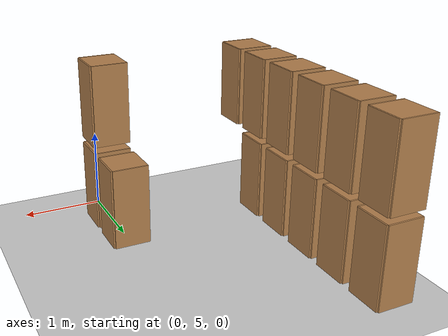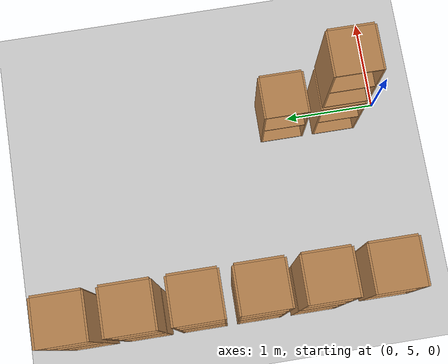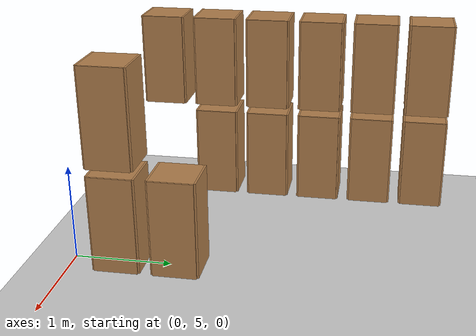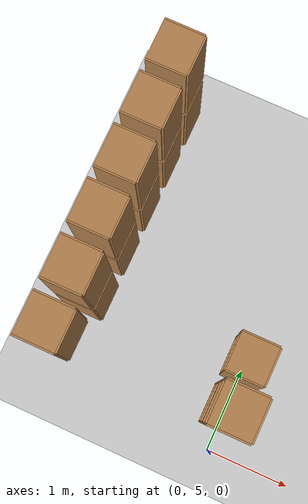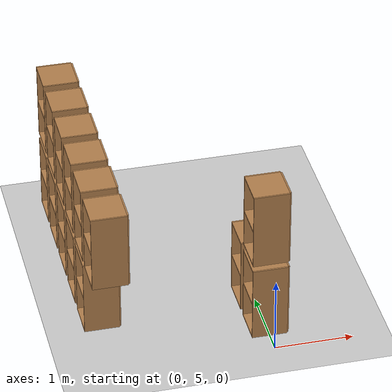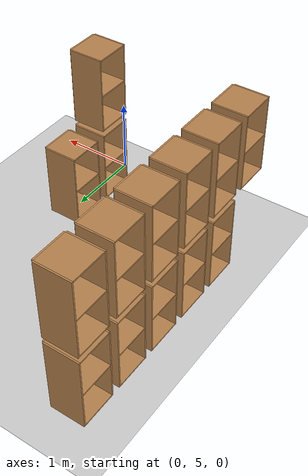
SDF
<sdf version="1.7">
 <world name="default">
  <model name="ground_plane">
   <static>1</static>
   <link name="link">
    <collision name="collision">
     <geometry><plane><normal>0 0 1</normal><size>100 100</size></plane></geometry>
     <surface><friction><ode><mu>100</mu><mu2>50</mu2></ode></friction></surface>
    </collision>
    <visual name="visual">
     <cast_shadows>0</cast_shadows>
     <geometry><plane><normal>0 0 1</normal><size>100 100</size></plane></geometry>
     <material>
      <script><uri>file://media/materials/scripts/gazebo.material</uri><name>Gazebo/Grey</name></script>
     </material>
    </visual>
   </link>
  </model>
  <model name="cabinet_13">
   <static>1</static>
   <link name="cabinet_bottom_plate">
    <inertial>
     <pose>0 0 -1 0 -0 0</pose>
     <inertia><ixx>2.05</ixx><ixy>0</ixy><ixz>0</ixz><iyy>2.05</iyy><iyz>0</iyz><izz>2.05</izz></inertia>
     <mass>25</mass>
    </inertial>
    <collision name="cabinet_bottom_plate_geom">
     <pose>0 0 0.01 0 -0 0</pose>
     <geometry><box><size>0.45 0.45 0.02</size></box></geometry>
    </collision>
    <visual name="cabinet_bottom_plate_geom_visual">
     <pose>0 0 0.01 0 -0 0</pose>
     <geometry><box><size>0.45 0.45 0.02</size></box></geometry>
     <material>
      <script><uri>file://media/materials/scripts/gazebo.material</uri><name>Gazebo/Wood</name></script>
     </material>
    </visual>
    <collision name="cabinet_bottom_plate_geom_cabinet_back_plate">
     <pose>0.235 0 0.51 0 -0 0</pose>
     <geometry><box><size>0.02 0.45 1.02</size></box></geometry>
    </collision>
    <visual name="cabinet_bottom_plate_geom_cabinet_back_plate_visual">
     <pose>0.235 0 0.51 0 -0 0</pose>
     <geometry><box><size>0.02 0.45 1.02</size></box></geometry>
     <material>
      <script><uri>file://media/materials/scripts/gazebo.material</uri><name>Gazebo/Wood</name></script>
     </material>
    </visual>
    <collision name="cabinet_bottom_plate_geom_cabinet_left_plate">
     <pose>0 0.235 0.51 0 -0 0</pose>
     <geometry><box><size>0.45 0.02 1.02</size></box></geometry>
    </collision>
    <visual name="cabinet_bottom_plate_geom_cabinet_left_plate_visual">
     <pose>0 0.235 0.51 0 -0 0</pose>
     <geometry><box><size>0.45 0.02 1.02</size></box></geometry>
     <material>
      <script><uri>file://media/materials/scripts/gazebo.material</uri><name>Gazebo/Wood</name></script>
     </material>
    </visual>
    <collision name="cabinet_bottom_plate_geom_cabinet_middle_plate">
     <pose>0 0 0.51 0 -0 0</pose>
     <geometry><box><size>0.45 0.45 0.02</size></box></geometry>
    </collision>
    <visual name="cabinet_bottom_plate_geom_cabinet_middle_plate_visual">
     <pose>0 0 0.51 0 -0 0</pose>
     <geometry><box><size>0.45 0.45 0.02</size></box></geometry>
     <material>
      <script><uri>file://media/materials/scripts/gazebo.material</uri><name>Gazebo/Wood</name></script>
     </material>
    </visual>
    <collision name="cabinet_bottom_plate_geom_cabinet_right_plate">
     <pose>0 -0.235 0.51 0 -0 0</pose>
     <geometry><box><size>0.45 0.02 1.02</size></box></geometry>
    </collision>
    <visual name="cabinet_bottom_plate_geom_cabinet_right_plate_visual">
     <pose>0 -0.235 0.51 0 -0 0</pose>
     <geometry><box><size>0.45 0.02 1.02</size></box></geometry>
     <material>
      <script><uri>file://media/materials/scripts/gazebo.material</uri><name>Gazebo/Wood</name></script>
     </material>
    </visual>
    <collision name="cabinet_bottom_plate_geom_cabinet_top_plate">
     <pose>0 0 1.01 0 -0 0</pose>
     <geometry><box><size>0.45 0.45 0.02</size></box></geometry>
    </collision>
    <visual name="cabinet_bottom_plate_geom_cabinet_top_plate_visual">
     <pose>0 0 1.01 0 -0 0</pose>
     <geometry><box><size>0.45 0.45 0.02</size></box></geometry>
     <material>
      <script><uri>file://media/materials/scripts/gazebo.material</uri><name>Gazebo/Wood</name></script>
     </material>
    </visual>
   </link>
   <pose>0 6.1 0 0 -0 0</pose>
  </model>
  <model name="cabinet_14">
   <static>1</static>
   <link name="cabinet_bottom_plate">
    <inertial>
     <pose>0 0 -1 0 -0 0</pose>
     <inertia><ixx>2.05</ixx><ixy>0</ixy><ixz>0</ixz><iyy>2.05</iyy><iyz>0</iyz><izz>2.05</izz></inertia>
     <mass>25</mass>
    </inertial>
    <collision name="cabinet_bottom_plate_geom">
     <pose>0 0 0.01 0 -0 0</pose>
     <geometry><box><size>0.45 0.45 0.02</size></box></geometry>
    </collision>
    <visual name="cabinet_bottom_plate_geom_visual">
     <pose>0 0 0.01 0 -0 0</pose>
     <geometry><box><size>0.45 0.45 0.02</size></box></geometry>
     <material>
      <script><uri>file://media/materials/scripts/gazebo.material</uri><name>Gazebo/Wood</name></script>
     </material>
    </visual>
    <collision name="cabinet_bottom_plate_geom_cabinet_back_plate">
     <pose>0.235 0 0.51 0 -0 0</pose>
     <geometry><box><size>0.02 0.45 1.02</size></box></geometry>
    </collision>
    <visual name="cabinet_bottom_plate_geom_cabinet_back_plate_visual">
     <pose>0.235 0 0.51 0 -0 0</pose>
     <geometry><box><size>0.02 0.45 1.02</size></box></geometry>
     <material>
      <script><uri>file://media/materials/scripts/gazebo.material</uri><name>Gazebo/Wood</name></script>
     </material>
    </visual>
    <collision name="cabinet_bottom_plate_geom_cabinet_left_plate">
     <pose>0 0.235 0.51 0 -0 0</pose>
     <geometry><box><size>0.45 0.02 1.02</size></box></geometry>
    </collision>
    <visual name="cabinet_bottom_plate_geom_cabinet_left_plate_visual">
     <pose>0 0.235 0.51 0 -0 0</pose>
     <geometry><box><size>0.45 0.02 1.02</size></box></geometry>
     <material>
      <script><uri>file://media/materials/scripts/gazebo.material</uri><name>Gazebo/Wood</name></script>
     </material>
    </visual>
    <collision name="cabinet_bottom_plate_geom_cabinet_middle_plate">
     <pose>0 0 0.51 0 -0 0</pose>
     <geometry><box><size>0.45 0.45 0.02</size></box></geometry>
    </collision>
    <visual name="cabinet_bottom_plate_geom_cabinet_middle_plate_visual">
     <pose>0 0 0.51 0 -0 0</pose>
     <geometry><box><size>0.45 0.45 0.02</size></box></geometry>
     <material>
      <script><uri>file://media/materials/scripts/gazebo.material</uri><name>Gazebo/Wood</name></script>
     </material>
    </visual>
    <collision name="cabinet_bottom_plate_geom_cabinet_right_plate">
     <pose>0 -0.235 0.51 0 -0 0</pose>
     <geometry><box><size>0.45 0.02 1.02</size></box></geometry>
    </collision>
    <visual name="cabinet_bottom_plate_geom_cabinet_right_plate_visual">
     <pose>0 -0.235 0.51 0 -0 0</pose>
     <geometry><box><size>0.45 0.02 1.02</size></box></geometry>
     <material>
      <script><uri>file://media/materials/scripts/gazebo.material</uri><name>Gazebo/Wood</name></script>
     </material>
    </visual>
    <collision name="cabinet_bottom_plate_geom_cabinet_top_plate">
     <pose>0 0 1.01 0 -0 0</pose>
     <geometry><box><size>0.45 0.45 0.02</size></box></geometry>
    </collision>
    <visual name="cabinet_bottom_plate_geom_cabinet_top_plate_visual">
     <pose>0 0 1.01 0 -0 0</pose>
     <geometry><box><size>0.45 0.45 0.02</size></box></geometry>
     <material>
      <script><uri>file://media/materials/scripts/gazebo.material</uri><name>Gazebo/Wood</name></script>
     </material>
    </visual>
   </link>
   <pose>0 5.5 0 0 -0 0</pose>
  </model>
  <model name="cabinet_21">
   <static>1</static>
   <link name="cabinet_bottom_plate">
    <inertial>
     <pose>0 0 -1 0 -0 0</pose>
     <inertia><ixx>2.05</ixx><ixy>0</ixy><ixz>0</ixz><iyy>2.05</iyy><iyz>0</iyz><izz>2.05</izz></inertia>
     <mass>25</mass>
    </inertial>
    <collision name="cabinet_bottom_plate_geom">
     <pose>0 0 0.01 0 -0 0</pose>
     <geometry><box><size>0.45 0.45 0.02</size></box></geometry>
    </collision>
    <visual name="cabinet_bottom_plate_geom_visual">
     <pose>0 0 0.01 0 -0 0</pose>
     <geometry><box><size>0.45 0.45 0.02</size></box></geometry>
     <material>
      <script><uri>file://media/materials/scripts/gazebo.material</uri><name>Gazebo/Wood</name></script>
     </material>
    </visual>
    <collision name="cabinet_bottom_plate_geom_cabinet_back_plate">
     <pose>0.235 0 0.51 0 -0 0</pose>
     <geometry><box><size>0.02 0.45 1.02</size></box></geometry>
    </collision>
    <visual name="cabinet_bottom_plate_geom_cabinet_back_plate_visual">
     <pose>0.235 0 0.51 0 -0 0</pose>
     <geometry><box><size>0.02 0.45 1.02</size></box></geometry>
     <material>
      <script><uri>file://media/materials/scripts/gazebo.material</uri><name>Gazebo/Wood</name></script>
     </material>
    </visual>
    <collision name="cabinet_bottom_plate_geom_cabinet_left_plate">
     <pose>0 0.235 0.51 0 -0 0</pose>
     <geometry><box><size>0.45 0.02 1.02</size></box></geometry>
    </collision>
    <visual name="cabinet_bottom_plate_geom_cabinet_left_plate_visual">
     <pose>0 0.235 0.51 0 -0 0</pose>
     <geometry><box><size>0.45 0.02 1.02</size></box></geometry>
     <material>
      <script><uri>file://media/materials/scripts/gazebo.material</uri><name>Gazebo/Wood</name></script>
     </material>
    </visual>
    <collision name="cabinet_bottom_plate_geom_cabinet_middle_plate">
     <pose>0 0 0.51 0 -0 0</pose>
     <geometry><box><size>0.45 0.45 0.02</size></box></geometry>
    </collision>
    <visual name="cabinet_bottom_plate_geom_cabinet_middle_plate_visual">
     <pose>0 0 0.51 0 -0 0</pose>
     <geometry><box><size>0.45 0.45 0.02</size></box></geometry>
     <material>
      <script><uri>file://media/materials/scripts/gazebo.material</uri><name>Gazebo/Wood</name></script>
     </material>
    </visual>
    <collision name="cabinet_bottom_plate_geom_cabinet_right_plate">
     <pose>0 -0.235 0.51 0 -0 0</pose>
     <geometry><box><size>0.45 0.02 1.02</size></box></geometry>
    </collision>
    <visual name="cabinet_bottom_plate_geom_cabinet_right_plate_visual">
     <pose>0 -0.235 0.51 0 -0 0</pose>
     <geometry><box><size>0.45 0.02 1.02</size></box></geometry>
     <material>
      <script><uri>file://media/materials/scripts/gazebo.material</uri><name>Gazebo/Wood</name></script>
     </material>
    </visual>
    <collision name="cabinet_bottom_plate_geom_cabinet_top_plate">
     <pose>0 0 1.01 0 -0 0</pose>
     <geometry><box><size>0.45 0.45 0.02</size></box></geometry>
    </collision>
    <visual name="cabinet_bottom_plate_geom_cabinet_top_plate_visual">
     <pose>0 0 1.01 0 -0 0</pose>
     <geometry><box><size>0.45 0.45 0.02</size></box></geometry>
     <material>
      <script><uri>file://media/materials/scripts/gazebo.material</uri><name>Gazebo/Wood</name></script>
     </material>
    </visual>
   </link>
   <pose>-2 6.1 0 0 -0 0</pose>
  </model>
  <model name="cabinet_22">
   <static>1</static>
   <link name="cabinet_bottom_plate">
    <inertial>
     <pose>0 0 -1 0 -0 0</pose>
     <inertia><ixx>2.05</ixx><ixy>0</ixy><ixz>0</ixz><iyy>2.05</iyy><iyz>0</iyz><izz>2.05</izz></inertia>
     <mass>25</mass>
    </inertial>
    <collision name="cabinet_bottom_plate_geom">
     <pose>0 0 0.01 0 -0 0</pose>
     <geometry><box><size>0.45 0.45 0.02</size></box></geometry>
    </collision>
    <visual name="cabinet_bottom_plate_geom_visual">
     <pose>0 0 0.01 0 -0 0</pose>
     <geometry><box><size>0.45 0.45 0.02</size></box></geometry>
     <material>
      <script><uri>file://media/materials/scripts/gazebo.material</uri><name>Gazebo/Wood</name></script>
     </material>
    </visual>
    <collision name="cabinet_bottom_plate_geom_cabinet_back_plate">
     <pose>0.235 0 0.51 0 -0 0</pose>
     <geometry><box><size>0.02 0.45 1.02</size></box></geometry>
    </collision>
    <visual name="cabinet_bottom_plate_geom_cabinet_back_plate_visual">
     <pose>0.235 0 0.51 0 -0 0</pose>
     <geometry><box><size>0.02 0.45 1.02</size></box></geometry>
     <material>
      <script><uri>file://media/materials/scripts/gazebo.material</uri><name>Gazebo/Wood</name></script>
     </material>
    </visual>
    <collision name="cabinet_bottom_plate_geom_cabinet_left_plate">
     <pose>0 0.235 0.51 0 -0 0</pose>
     <geometry><box><size>0.45 0.02 1.02</size></box></geometry>
    </collision>
    <visual name="cabinet_bottom_plate_geom_cabinet_left_plate_visual">
     <pose>0 0.235 0.51 0 -0 0</pose>
     <geometry><box><size>0.45 0.02 1.02</size></box></geometry>
     <material>
      <script><uri>file://media/materials/scripts/gazebo.material</uri><name>Gazebo/Wood</name></script>
     </material>
    </visual>
    <collision name="cabinet_bottom_plate_geom_cabinet_middle_plate">
     <pose>0 0 0.51 0 -0 0</pose>
     <geometry><box><size>0.45 0.45 0.02</size></box></geometry>
    </collision>
    <visual name="cabinet_bottom_plate_geom_cabinet_middle_plate_visual">
     <pose>0 0 0.51 0 -0 0</pose>
     <geometry><box><size>0.45 0.45 0.02</size></box></geometry>
     <material>
      <script><uri>file://media/materials/scripts/gazebo.material</uri><name>Gazebo/Wood</name></script>
     </material>
    </visual>
    <collision name="cabinet_bottom_plate_geom_cabinet_right_plate">
     <pose>0 -0.235 0.51 0 -0 0</pose>
     <geometry><box><size>0.45 0.02 1.02</size></box></geometry>
    </collision>
    <visual name="cabinet_bottom_plate_geom_cabinet_right_plate_visual">
     <pose>0 -0.235 0.51 0 -0 0</pose>
     <geometry><box><size>0.45 0.02 1.02</size></box></geometry>
     <material>
      <script><uri>file://media/materials/scripts/gazebo.material</uri><name>Gazebo/Wood</name></script>
     </material>
    </visual>
    <collision name="cabinet_bottom_plate_geom_cabinet_top_plate">
     <pose>0 0 1.01 0 -0 0</pose>
     <geometry><box><size>0.45 0.45 0.02</size></box></geometry>
    </collision>
    <visual name="cabinet_bottom_plate_geom_cabinet_top_plate_visual">
     <pose>0 0 1.01 0 -0 0</pose>
     <geometry><box><size>0.45 0.45 0.02</size></box></geometry>
     <material>
      <script><uri>file://media/materials/scripts/gazebo.material</uri><name>Gazebo/Wood</name></script>
     </material>
    </visual>
   </link>
   <pose>-2 6.7 0 0 -0 0</pose>
  </model>
  <model name="cabinet_23">
   <static>1</static>
   <link name="cabinet_bottom_plate">
    <inertial>
     <pose>0 0 -1 0 -0 0</pose>
     <inertia><ixx>2.05</ixx><ixy>0</ixy><ixz>0</ixz><iyy>2.05</iyy><iyz>0</iyz><izz>2.05</izz></inertia>
     <mass>25</mass>
    </inertial>
    <collision name="cabinet_bottom_plate_geom">
     <pose>0 0 0.01 0 -0 0</pose>
     <geometry><box><size>0.45 0.45 0.02</size></box></geometry>
    </collision>
    <visual name="cabinet_bottom_plate_geom_visual">
     <pose>0 0 0.01 0 -0 0</pose>
     <geometry><box><size>0.45 0.45 0.02</size></box></geometry>
     <material>
      <script><uri>file://media/materials/scripts/gazebo.material</uri><name>Gazebo/Wood</name></script>
     </material>
    </visual>
    <collision name="cabinet_bottom_plate_geom_cabinet_back_plate">
     <pose>0.235 0 0.51 0 -0 0</pose>
     <geometry><box><size>0.02 0.45 1.02</size></box></geometry>
    </collision>
    <visual name="cabinet_bottom_plate_geom_cabinet_back_plate_visual">
     <pose>0.235 0 0.51 0 -0 0</pose>
     <geometry><box><size>0.02 0.45 1.02</size></box></geometry>
     <material>
      <script><uri>file://media/materials/scripts/gazebo.material</uri><name>Gazebo/Wood</name></script>
     </material>
    </visual>
    <collision name="cabinet_bottom_plate_geom_cabinet_left_plate">
     <pose>0 0.235 0.51 0 -0 0</pose>
     <geometry><box><size>0.45 0.02 1.02</size></box></geometry>
    </collision>
    <visual name="cabinet_bottom_plate_geom_cabinet_left_plate_visual">
     <pose>0 0.235 0.51 0 -0 0</pose>
     <geometry><box><size>0.45 0.02 1.02</size></box></geometry>
     <material>
      <script><uri>file://media/materials/scripts/gazebo.material</uri><name>Gazebo/Wood</name></script>
     </material>
    </visual>
    <collision name="cabinet_bottom_plate_geom_cabinet_middle_plate">
     <pose>0 0 0.51 0 -0 0</pose>
     <geometry><box><size>0.45 0.45 0.02</size></box></geometry>
    </collision>
    <visual name="cabinet_bottom_plate_geom_cabinet_middle_plate_visual">
     <pose>0 0 0.51 0 -0 0</pose>
     <geometry><box><size>0.45 0.45 0.02</size></box></geometry>
     <material>
      <script><uri>file://media/materials/scripts/gazebo.material</uri><name>Gazebo/Wood</name></script>
     </material>
    </visual>
    <collision name="cabinet_bottom_plate_geom_cabinet_right_plate">
     <pose>0 -0.235 0.51 0 -0 0</pose>
     <geometry><box><size>0.45 0.02 1.02</size></box></geometry>
    </collision>
    <visual name="cabinet_bottom_plate_geom_cabinet_right_plate_visual">
     <pose>0 -0.235 0.51 0 -0 0</pose>
     <geometry><box><size>0.45 0.02 1.02</size></box></geometry>
     <material>
      <script><uri>file://media/materials/scripts/gazebo.material</uri><name>Gazebo/Wood</name></script>
     </material>
    </visual>
    <collision name="cabinet_bottom_plate_geom_cabinet_top_plate">
     <pose>0 0 1.01 0 -0 0</pose>
     <geometry><box><size>0.45 0.45 0.02</size></box></geometry>
    </collision>
    <visual name="cabinet_bottom_plate_geom_cabinet_top_plate_visual">
     <pose>0 0 1.01 0 -0 0</pose>
     <geometry><box><size>0.45 0.45 0.02</size></box></geometry>
     <material>
      <script><uri>file://media/materials/scripts/gazebo.material</uri><name>Gazebo/Wood</name></script>
     </material>
    </visual>
   </link>
   <pose>-2 7.3 0 0 -0 0</pose>
  </model>
  <model name="cabinet_24">
   <static>1</static>
   <link name="cabinet_bottom_plate">
    <inertial>
     <pose>0 0 -1 0 -0 0</pose>
     <inertia><ixx>2.05</ixx><ixy>0</ixy><ixz>0</ixz><iyy>2.05</iyy><iyz>0</iyz><izz>2.05</izz></inertia>
     <mass>25</mass>
    </inertial>
    <collision name="cabinet_bottom_plate_geom">
     <pose>0 0 0.01 0 -0 0</pose>
     <geometry><box><size>0.45 0.45 0.02</size></box></geometry>
    </collision>
    <visual name="cabinet_bottom_plate_geom_visual">
     <pose>0 0 0.01 0 -0 0</pose>
     <geometry><box><size>0.45 0.45 0.02</size></box></geometry>
     <material>
      <script><uri>file://media/materials/scripts/gazebo.material</uri><name>Gazebo/Wood</name></script>
     </material>
    </visual>
    <collision name="cabinet_bottom_plate_geom_cabinet_back_plate">
     <pose>0.235 0 0.51 0 -0 0</pose>
     <geometry><box><size>0.02 0.45 1.02</size></box></geometry>
    </collision>
    <visual name="cabinet_bottom_plate_geom_cabinet_back_plate_visual">
     <pose>0.235 0 0.51 0 -0 0</pose>
     <geometry><box><size>0.02 0.45 1.02</size></box></geometry>
     <material>
      <script><uri>file://media/materials/scripts/gazebo.material</uri><name>Gazebo/Wood</name></script>
     </material>
    </visual>
    <collision name="cabinet_bottom_plate_geom_cabinet_left_plate">
     <pose>0 0.235 0.51 0 -0 0</pose>
     <geometry><box><size>0.45 0.02 1.02</size></box></geometry>
    </collision>
    <visual name="cabinet_bottom_plate_geom_cabinet_left_plate_visual">
     <pose>0 0.235 0.51 0 -0 0</pose>
     <geometry><box><size>0.45 0.02 1.02</size></box></geometry>
     <material>
      <script><uri>file://media/materials/scripts/gazebo.material</uri><name>Gazebo/Wood</name></script>
     </material>
    </visual>
    <collision name="cabinet_bottom_plate_geom_cabinet_middle_plate">
     <pose>0 0 0.51 0 -0 0</pose>
     <geometry><box><size>0.45 0.45 0.02</size></box></geometry>
    </collision>
    <visual name="cabinet_bottom_plate_geom_cabinet_middle_plate_visual">
     <pose>0 0 0.51 0 -0 0</pose>
     <geometry><box><size>0.45 0.45 0.02</size></box></geometry>
     <material>
      <script><uri>file://media/materials/scripts/gazebo.material</uri><name>Gazebo/Wood</name></script>
     </material>
    </visual>
    <collision name="cabinet_bottom_plate_geom_cabinet_right_plate">
     <pose>0 -0.235 0.51 0 -0 0</pose>
     <geometry><box><size>0.45 0.02 1.02</size></box></geometry>
    </collision>
    <visual name="cabinet_bottom_plate_geom_cabinet_right_plate_visual">
     <pose>0 -0.235 0.51 0 -0 0</pose>
     <geometry><box><size>0.45 0.02 1.02</size></box></geometry>
     <material>
      <script><uri>file://media/materials/scripts/gazebo.material</uri><name>Gazebo/Wood</name></script>
     </material>
    </visual>
    <collision name="cabinet_bottom_plate_geom_cabinet_top_plate">
     <pose>0 0 1.01 0 -0 0</pose>
     <geometry><box><size>0.45 0.45 0.02</size></box></geometry>
    </collision>
    <visual name="cabinet_bottom_plate_geom_cabinet_top_plate_visual">
     <pose>0 0 1.01 0 -0 0</pose>
     <geometry><box><size>0.45 0.45 0.02</size></box></geometry>
     <material>
      <script><uri>file://media/materials/scripts/gazebo.material</uri><name>Gazebo/Wood</name></script>
     </material>
    </visual>
   </link>
   <pose>-2 7.9 0 0 -0 0</pose>
  </model>
  <model name="cabinet_25">
   <static>1</static>
   <link name="cabinet_bottom_plate">
    <inertial>
     <pose>0 0 -1 0 -0 0</pose>
     <inertia><ixx>2.05</ixx><ixy>0</ixy><ixz>0</ixz><iyy>2.05</iyy><iyz>0</iyz><izz>2.05</izz></inertia>
     <mass>25</mass>
    </inertial>
    <collision name="cabinet_bottom_plate_geom">
     <pose>0 0 0.01 0 -0 0</pose>
     <geometry><box><size>0.45 0.45 0.02</size></box></geometry>
    </collision>
    <visual name="cabinet_bottom_plate_geom_visual">
     <pose>0 0 0.01 0 -0 0</pose>
     <geometry><box><size>0.45 0.45 0.02</size></box></geometry>
     <material>
      <script><uri>file://media/materials/scripts/gazebo.material</uri><name>Gazebo/Wood</name></script>
     </material>
    </visual>
    <collision name="cabinet_bottom_plate_geom_cabinet_back_plate">
     <pose>0.235 0 0.51 0 -0 0</pose>
     <geometry><box><size>0.02 0.45 1.02</size></box></geometry>
    </collision>
    <visual name="cabinet_bottom_plate_geom_cabinet_back_plate_visual">
     <pose>0.235 0 0.51 0 -0 0</pose>
     <geometry><box><size>0.02 0.45 1.02</size></box></geometry>
     <material>
      <script><uri>file://media/materials/scripts/gazebo.material</uri><name>Gazebo/Wood</name></script>
     </material>
    </visual>
    <collision name="cabinet_bottom_plate_geom_cabinet_left_plate">
     <pose>0 0.235 0.51 0 -0 0</pose>
     <geometry><box><size>0.45 0.02 1.02</size></box></geometry>
    </collision>
    <visual name="cabinet_bottom_plate_geom_cabinet_left_plate_visual">
     <pose>0 0.235 0.51 0 -0 0</pose>
     <geometry><box><size>0.45 0.02 1.02</size></box></geometry>
     <material>
      <script><uri>file://media/materials/scripts/gazebo.material</uri><name>Gazebo/Wood</name></script>
     </material>
    </visual>
    <collision name="cabinet_bottom_plate_geom_cabinet_middle_plate">
     <pose>0 0 0.51 0 -0 0</pose>
     <geometry><box><size>0.45 0.45 0.02</size></box></geometry>
    </collision>
    <visual name="cabinet_bottom_plate_geom_cabinet_middle_plate_visual">
     <pose>0 0 0.51 0 -0 0</pose>
     <geometry><box><size>0.45 0.45 0.02</size></box></geometry>
     <material>
      <script><uri>file://media/materials/scripts/gazebo.material</uri><name>Gazebo/Wood</name></script>
     </material>
    </visual>
    <collision name="cabinet_bottom_plate_geom_cabinet_right_plate">
     <pose>0 -0.235 0.51 0 -0 0</pose>
     <geometry><box><size>0.45 0.02 1.02</size></box></geometry>
    </collision>
    <visual name="cabinet_bottom_plate_geom_cabinet_right_plate_visual">
     <pose>0 -0.235 0.51 0 -0 0</pose>
     <geometry><box><size>0.45 0.02 1.02</size></box></geometry>
     <material>
      <script><uri>file://media/materials/scripts/gazebo.material</uri><name>Gazebo/Wood</name></script>
     </material>
    </visual>
    <collision name="cabinet_bottom_plate_geom_cabinet_top_plate">
     <pose>0 0 1.01 0 -0 0</pose>
     <geometry><box><size>0.45 0.45 0.02</size></box></geometry>
    </collision>
    <visual name="cabinet_bottom_plate_geom_cabinet_top_plate_visual">
     <pose>0 0 1.01 0 -0 0</pose>
     <geometry><box><size>0.45 0.45 0.02</size></box></geometry>
     <material>
      <script><uri>file://media/materials/scripts/gazebo.material</uri><name>Gazebo/Wood</name></script>
     </material>
    </visual>
   </link>
   <pose>-2 8.5 0 0 -0 0</pose>
  </model>
  <model name="cabinet_97">
   <static>1</static>
   <link name="cabinet_bottom_plate">
    <inertial>
     <pose>0 0 -1 0 -0 0</pose>
     <inertia><ixx>2.05</ixx><ixy>0</ixy><ixz>0</ixz><iyy>2.05</iyy><iyz>0</iyz><izz>2.05</izz></inertia>
     <mass>25</mass>
    </inertial>
    <collision name="cabinet_bottom_plate_geom">
     <pose>0 0 0.01 0 -0 0</pose>
     <geometry><box><size>0.45 0.45 0.02</size></box></geometry>
    </collision>
    <visual name="cabinet_bottom_plate_geom_visual">
     <pose>0 0 0.01 0 -0 0</pose>
     <geometry><box><size>0.45 0.45 0.02</size></box></geometry>
     <material>
      <script><uri>file://media/materials/scripts/gazebo.material</uri><name>Gazebo/Wood</name></script>
     </material>
    </visual>
    <collision name="cabinet_bottom_plate_geom_cabinet_back_plate">
     <pose>0.235 0 0.51 0 -0 0</pose>
     <geometry><box><size>0.02 0.45 1.02</size></box></geometry>
    </collision>
    <visual name="cabinet_bottom_plate_geom_cabinet_back_plate_visual">
     <pose>0.235 0 0.51 0 -0 0</pose>
     <geometry><box><size>0.02 0.45 1.02</size></box></geometry>
     <material>
      <script><uri>file://media/materials/scripts/gazebo.material</uri><name>Gazebo/Wood</name></script>
     </material>
    </visual>
    <collision name="cabinet_bottom_plate_geom_cabinet_left_plate">
     <pose>0 0.235 0.51 0 -0 0</pose>
     <geometry><box><size>0.45 0.02 1.02</size></box></geometry>
    </collision>
    <visual name="cabinet_bottom_plate_geom_cabinet_left_plate_visual">
     <pose>0 0.235 0.51 0 -0 0</pose>
     <geometry><box><size>0.45 0.02 1.02</size></box></geometry>
     <material>
      <script><uri>file://media/materials/scripts/gazebo.material</uri><name>Gazebo/Wood</name></script>
     </material>
    </visual>
    <collision name="cabinet_bottom_plate_geom_cabinet_middle_plate">
     <pose>0 0 0.51 0 -0 0</pose>
     <geometry><box><size>0.45 0.45 0.02</size></box></geometry>
    </collision>
    <visual name="cabinet_bottom_plate_geom_cabinet_middle_plate_visual">
     <pose>0 0 0.51 0 -0 0</pose>
     <geometry><box><size>0.45 0.45 0.02</size></box></geometry>
     <material>
      <script><uri>file://media/materials/scripts/gazebo.material</uri><name>Gazebo/Wood</name></script>
     </material>
    </visual>
    <collision name="cabinet_bottom_plate_geom_cabinet_right_plate">
     <pose>0 -0.235 0.51 0 -0 0</pose>
     <geometry><box><size>0.45 0.02 1.02</size></box></geometry>
    </collision>
    <visual name="cabinet_bottom_plate_geom_cabinet_right_plate_visual">
     <pose>0 -0.235 0.51 0 -0 0</pose>
     <geometry><box><size>0.45 0.02 1.02</size></box></geometry>
     <material>
      <script><uri>file://media/materials/scripts/gazebo.material</uri><name>Gazebo/Wood</name></script>
     </material>
    </visual>
    <collision name="cabinet_bottom_plate_geom_cabinet_top_plate">
     <pose>0 0 1.01 0 -0 0</pose>
     <geometry><box><size>0.45 0.45 0.02</size></box></geometry>
    </collision>
    <visual name="cabinet_bottom_plate_geom_cabinet_top_plate_visual">
     <pose>0 0 1.01 0 -0 0</pose>
     <geometry><box><size>0.45 0.45 0.02</size></box></geometry>
     <material>
      <script><uri>file://media/materials/scripts/gazebo.material</uri><name>Gazebo/Wood</name></script>
     </material>
    </visual>
   </link>
   <pose>0 5.5 1.1 0 -0 0</pose>
  </model>
  <model name="cabinet_103">
   <static>1</static>
   <link name="cabinet_bottom_plate">
    <inertial>
     <pose>0 0 -1 0 -0 0</pose>
     <inertia><ixx>2.05</ixx><ixy>0</ixy><ixz>0</ixz><iyy>2.05</iyy><iyz>0</iyz><izz>2.05</izz></inertia>
     <mass>25</mass>
    </inertial>
    <collision name="cabinet_bottom_plate_geom">
     <pose>0 0 0.01 0 -0 0</pose>
     <geometry><box><size>0.45 0.45 0.02</size></box></geometry>
    </collision>
    <visual name="cabinet_bottom_plate_geom_visual">
     <pose>0 0 0.01 0 -0 0</pose>
     <geometry><box><size>0.45 0.45 0.02</size></box></geometry>
     <material>
      <script><uri>file://media/materials/scripts/gazebo.material</uri><name>Gazebo/Wood</name></script>
     </material>
    </visual>
    <collision name="cabinet_bottom_plate_geom_cabinet_back_plate">
     <pose>0.235 0 0.51 0 -0 0</pose>
     <geometry><box><size>0.02 0.45 1.02</size></box></geometry>
    </collision>
    <visual name="cabinet_bottom_plate_geom_cabinet_back_plate_visual">
     <pose>0.235 0 0.51 0 -0 0</pose>
     <geometry><box><size>0.02 0.45 1.02</size></box></geometry>
     <material>
      <script><uri>file://media/materials/scripts/gazebo.material</uri><name>Gazebo/Wood</name></script>
     </material>
    </visual>
    <collision name="cabinet_bottom_plate_geom_cabinet_left_plate">
     <pose>0 0.235 0.51 0 -0 0</pose>
     <geometry><box><size>0.45 0.02 1.02</size></box></geometry>
    </collision>
    <visual name="cabinet_bottom_plate_geom_cabinet_left_plate_visual">
     <pose>0 0.235 0.51 0 -0 0</pose>
     <geometry><box><size>0.45 0.02 1.02</size></box></geometry>
     <material>
      <script><uri>file://media/materials/scripts/gazebo.material</uri><name>Gazebo/Wood</name></script>
     </material>
    </visual>
    <collision name="cabinet_bottom_plate_geom_cabinet_middle_plate">
     <pose>0 0 0.51 0 -0 0</pose>
     <geometry><box><size>0.45 0.45 0.02</size></box></geometry>
    </collision>
    <visual name="cabinet_bottom_plate_geom_cabinet_middle_plate_visual">
     <pose>0 0 0.51 0 -0 0</pose>
     <geometry><box><size>0.45 0.45 0.02</size></box></geometry>
     <material>
      <script><uri>file://media/materials/scripts/gazebo.material</uri><name>Gazebo/Wood</name></script>
     </material>
    </visual>
    <collision name="cabinet_bottom_plate_geom_cabinet_right_plate">
     <pose>0 -0.235 0.51 0 -0 0</pose>
     <geometry><box><size>0.45 0.02 1.02</size></box></geometry>
    </collision>
    <visual name="cabinet_bottom_plate_geom_cabinet_right_plate_visual">
     <pose>0 -0.235 0.51 0 -0 0</pose>
     <geometry><box><size>0.45 0.02 1.02</size></box></geometry>
     <material>
      <script><uri>file://media/materials/scripts/gazebo.material</uri><name>Gazebo/Wood</name></script>
     </material>
    </visual>
    <collision name="cabinet_bottom_plate_geom_cabinet_top_plate">
     <pose>0 0 1.01 0 -0 0</pose>
     <geometry><box><size>0.45 0.45 0.02</size></box></geometry>
    </collision>
    <visual name="cabinet_bottom_plate_geom_cabinet_top_plate_visual">
     <pose>0 0 1.01 0 -0 0</pose>
     <geometry><box><size>0.45 0.45 0.02</size></box></geometry>
     <material>
      <script><uri>file://media/materials/scripts/gazebo.material</uri><name>Gazebo/Wood</name></script>
     </material>
    </visual>
   </link>
   <pose>-2 5.5 1.1 0 -0 0</pose>
  </model>
  <model name="cabinet_104">
   <static>1</static>
   <link name="cabinet_bottom_plate">
    <inertial>
     <pose>0 0 -1 0 -0 0</pose>
     <inertia><ixx>2.05</ixx><ixy>0</ixy><ixz>0</ixz><iyy>2.05</iyy><iyz>0</iyz><izz>2.05</izz></inertia>
     <mass>25</mass>
    </inertial>
    <collision name="cabinet_bottom_plate_geom">
     <pose>0 0 0.01 0 -0 0</pose>
     <geometry><box><size>0.45 0.45 0.02</size></box></geometry>
    </collision>
    <visual name="cabinet_bottom_plate_geom_visual">
     <pose>0 0 0.01 0 -0 0</pose>
     <geometry><box><size>0.45 0.45 0.02</size></box></geometry>
     <material>
      <script><uri>file://media/materials/scripts/gazebo.material</uri><name>Gazebo/Wood</name></script>
     </material>
    </visual>
    <collision name="cabinet_bottom_plate_geom_cabinet_back_plate">
     <pose>0.235 0 0.51 0 -0 0</pose>
     <geometry><box><size>0.02 0.45 1.02</size></box></geometry>
    </collision>
    <visual name="cabinet_bottom_plate_geom_cabinet_back_plate_visual">
     <pose>0.235 0 0.51 0 -0 0</pose>
     <geometry><box><size>0.02 0.45 1.02</size></box></geometry>
     <material>
      <script><uri>file://media/materials/scripts/gazebo.material</uri><name>Gazebo/Wood</name></script>
     </material>
    </visual>
    <collision name="cabinet_bottom_plate_geom_cabinet_left_plate">
     <pose>0 0.235 0.51 0 -0 0</pose>
     <geometry><box><size>0.45 0.02 1.02</size></box></geometry>
    </collision>
    <visual name="cabinet_bottom_plate_geom_cabinet_left_plate_visual">
     <pose>0 0.235 0.51 0 -0 0</pose>
     <geometry><box><size>0.45 0.02 1.02</size></box></geometry>
     <material>
      <script><uri>file://media/materials/scripts/gazebo.material</uri><name>Gazebo/Wood</name></script>
     </material>
    </visual>
    <collision name="cabinet_bottom_plate_geom_cabinet_middle_plate">
     <pose>0 0 0.51 0 -0 0</pose>
     <geometry><box><size>0.45 0.45 0.02</size></box></geometry>
    </collision>
    <visual name="cabinet_bottom_plate_geom_cabinet_middle_plate_visual">
     <pose>0 0 0.51 0 -0 0</pose>
     <geometry><box><size>0.45 0.45 0.02</size></box></geometry>
     <material>
      <script><uri>file://media/materials/scripts/gazebo.material</uri><name>Gazebo/Wood</name></script>
     </material>
    </visual>
    <collision name="cabinet_bottom_plate_geom_cabinet_right_plate">
     <pose>0 -0.235 0.51 0 -0 0</pose>
     <geometry><box><size>0.45 0.02 1.02</size></box></geometry>
    </collision>
    <visual name="cabinet_bottom_plate_geom_cabinet_right_plate_visual">
     <pose>0 -0.235 0.51 0 -0 0</pose>
     <geometry><box><size>0.45 0.02 1.02</size></box></geometry>
     <material>
      <script><uri>file://media/materials/scripts/gazebo.material</uri><name>Gazebo/Wood</name></script>
     </material>
    </visual>
    <collision name="cabinet_bottom_plate_geom_cabinet_top_plate">
     <pose>0 0 1.01 0 -0 0</pose>
     <geometry><box><size>0.45 0.45 0.02</size></box></geometry>
    </collision>
    <visual name="cabinet_bottom_plate_geom_cabinet_top_plate_visual">
     <pose>0 0 1.01 0 -0 0</pose>
     <geometry><box><size>0.45 0.45 0.02</size></box></geometry>
     <material>
      <script><uri>file://media/materials/scripts/gazebo.material</uri><name>Gazebo/Wood</name></script>
     </material>
    </visual>
   </link>
   <pose>-2 6.1 1.1 0 -0 0</pose>
  </model>
  <model name="cabinet_105">
   <static>1</static>
   <link name="cabinet_bottom_plate">
    <inertial>
     <pose>0 0 -1 0 -0 0</pose>
     <inertia><ixx>2.05</ixx><ixy>0</ixy><ixz>0</ixz><iyy>2.05</iyy><iyz>0</iyz><izz>2.05</izz></inertia>
     <mass>25</mass>
    </inertial>
    <collision name="cabinet_bottom_plate_geom">
     <pose>0 0 0.01 0 -0 0</pose>
     <geometry><box><size>0.45 0.45 0.02</size></box></geometry>
    </collision>
    <visual name="cabinet_bottom_plate_geom_visual">
     <pose>0 0 0.01 0 -0 0</pose>
     <geometry><box><size>0.45 0.45 0.02</size></box></geometry>
     <material>
      <script><uri>file://media/materials/scripts/gazebo.material</uri><name>Gazebo/Wood</name></script>
     </material>
    </visual>
    <collision name="cabinet_bottom_plate_geom_cabinet_back_plate">
     <pose>0.235 0 0.51 0 -0 0</pose>
     <geometry><box><size>0.02 0.45 1.02</size></box></geometry>
    </collision>
    <visual name="cabinet_bottom_plate_geom_cabinet_back_plate_visual">
     <pose>0.235 0 0.51 0 -0 0</pose>
     <geometry><box><size>0.02 0.45 1.02</size></box></geometry>
     <material>
      <script><uri>file://media/materials/scripts/gazebo.material</uri><name>Gazebo/Wood</name></script>
     </material>
    </visual>
    <collision name="cabinet_bottom_plate_geom_cabinet_left_plate">
     <pose>0 0.235 0.51 0 -0 0</pose>
     <geometry><box><size>0.45 0.02 1.02</size></box></geometry>
    </collision>
    <visual name="cabinet_bottom_plate_geom_cabinet_left_plate_visual">
     <pose>0 0.235 0.51 0 -0 0</pose>
     <geometry><box><size>0.45 0.02 1.02</size></box></geometry>
     <material>
      <script><uri>file://media/materials/scripts/gazebo.material</uri><name>Gazebo/Wood</name></script>
     </material>
    </visual>
    <collision name="cabinet_bottom_plate_geom_cabinet_middle_plate">
     <pose>0 0 0.51 0 -0 0</pose>
     <geometry><box><size>0.45 0.45 0.02</size></box></geometry>
    </collision>
    <visual name="cabinet_bottom_plate_geom_cabinet_middle_plate_visual">
     <pose>0 0 0.51 0 -0 0</pose>
     <geometry><box><size>0.45 0.45 0.02</size></box></geometry>
     <material>
      <script><uri>file://media/materials/scripts/gazebo.material</uri><name>Gazebo/Wood</name></script>
     </material>
    </visual>
    <collision name="cabinet_bottom_plate_geom_cabinet_right_plate">
     <pose>0 -0.235 0.51 0 -0 0</pose>
     <geometry><box><size>0.45 0.02 1.02</size></box></geometry>
    </collision>
    <visual name="cabinet_bottom_plate_geom_cabinet_right_plate_visual">
     <pose>0 -0.235 0.51 0 -0 0</pose>
     <geometry><box><size>0.45 0.02 1.02</size></box></geometry>
     <material>
      <script><uri>file://media/materials/scripts/gazebo.material</uri><name>Gazebo/Wood</name></script>
     </material>
    </visual>
    <collision name="cabinet_bottom_plate_geom_cabinet_top_plate">
     <pose>0 0 1.01 0 -0 0</pose>
     <geometry><box><size>0.45 0.45 0.02</size></box></geometry>
    </collision>
    <visual name="cabinet_bottom_plate_geom_cabinet_top_plate_visual">
     <pose>0 0 1.01 0 -0 0</pose>
     <geometry><box><size>0.45 0.45 0.02</size></box></geometry>
     <material>
      <script><uri>file://media/materials/scripts/gazebo.material</uri><name>Gazebo/Wood</name></script>
     </material>
    </visual>
   </link>
   <pose>-2 6.7 1.1 0 -0 0</pose>
  </model>
  <model name="cabinet_106">
   <static>1</static>
   <link name="cabinet_bottom_plate">
    <inertial>
     <pose>0 0 -1 0 -0 0</pose>
     <inertia><ixx>2.05</ixx><ixy>0</ixy><ixz>0</ixz><iyy>2.05</iyy><iyz>0</iyz><izz>2.05</izz></inertia>
     <mass>25</mass>
    </inertial>
    <collision name="cabinet_bottom_plate_geom">
     <pose>0 0 0.01 0 -0 0</pose>
     <geometry><box><size>0.45 0.45 0.02</size></box></geometry>
    </collision>
    <visual name="cabinet_bottom_plate_geom_visual">
     <pose>0 0 0.01 0 -0 0</pose>
     <geometry><box><size>0.45 0.45 0.02</size></box></geometry>
     <material>
      <script><uri>file://media/materials/scripts/gazebo.material</uri><name>Gazebo/Wood</name></script>
     </material>
    </visual>
    <collision name="cabinet_bottom_plate_geom_cabinet_back_plate">
     <pose>0.235 0 0.51 0 -0 0</pose>
     <geometry><box><size>0.02 0.45 1.02</size></box></geometry>
    </collision>
    <visual name="cabinet_bottom_plate_geom_cabinet_back_plate_visual">
     <pose>0.235 0 0.51 0 -0 0</pose>
     <geometry><box><size>0.02 0.45 1.02</size></box></geometry>
     <material>
      <script><uri>file://media/materials/scripts/gazebo.material</uri><name>Gazebo/Wood</name></script>
     </material>
    </visual>
    <collision name="cabinet_bottom_plate_geom_cabinet_left_plate">
     <pose>0 0.235 0.51 0 -0 0</pose>
     <geometry><box><size>0.45 0.02 1.02</size></box></geometry>
    </collision>
    <visual name="cabinet_bottom_plate_geom_cabinet_left_plate_visual">
     <pose>0 0.235 0.51 0 -0 0</pose>
     <geometry><box><size>0.45 0.02 1.02</size></box></geometry>
     <material>
      <script><uri>file://media/materials/scripts/gazebo.material</uri><name>Gazebo/Wood</name></script>
     </material>
    </visual>
    <collision name="cabinet_bottom_plate_geom_cabinet_middle_plate">
     <pose>0 0 0.51 0 -0 0</pose>
     <geometry><box><size>0.45 0.45 0.02</size></box></geometry>
    </collision>
    <visual name="cabinet_bottom_plate_geom_cabinet_middle_plate_visual">
     <pose>0 0 0.51 0 -0 0</pose>
     <geometry><box><size>0.45 0.45 0.02</size></box></geometry>
     <material>
      <script><uri>file://media/materials/scripts/gazebo.material</uri><name>Gazebo/Wood</name></script>
     </material>
    </visual>
    <collision name="cabinet_bottom_plate_geom_cabinet_right_plate">
     <pose>0 -0.235 0.51 0 -0 0</pose>
     <geometry><box><size>0.45 0.02 1.02</size></box></geometry>
    </collision>
    <visual name="cabinet_bottom_plate_geom_cabinet_right_plate_visual">
     <pose>0 -0.235 0.51 0 -0 0</pose>
     <geometry><box><size>0.45 0.02 1.02</size></box></geometry>
     <material>
      <script><uri>file://media/materials/scripts/gazebo.material</uri><name>Gazebo/Wood</name></script>
     </material>
    </visual>
    <collision name="cabinet_bottom_plate_geom_cabinet_top_plate">
     <pose>0 0 1.01 0 -0 0</pose>
     <geometry><box><size>0.45 0.45 0.02</size></box></geometry>
    </collision>
    <visual name="cabinet_bottom_plate_geom_cabinet_top_plate_visual">
     <pose>0 0 1.01 0 -0 0</pose>
     <geometry><box><size>0.45 0.45 0.02</size></box></geometry>
     <material>
      <script><uri>file://media/materials/scripts/gazebo.material</uri><name>Gazebo/Wood</name></script>
     </material>
    </visual>
   </link>
   <pose>-2 7.3 1.1 0 -0 0</pose>
  </model>
  <model name="cabinet_107">
   <static>1</static>
   <link name="cabinet_bottom_plate">
    <inertial>
     <pose>0 0 -1 0 -0 0</pose>
     <inertia><ixx>2.05</ixx><ixy>0</ixy><ixz>0</ixz><iyy>2.05</iyy><iyz>0</iyz><izz>2.05</izz></inertia>
     <mass>25</mass>
    </inertial>
    <collision name="cabinet_bottom_plate_geom">
     <pose>0 0 0.01 0 -0 0</pose>
     <geometry><box><size>0.45 0.45 0.02</size></box></geometry>
    </collision>
    <visual name="cabinet_bottom_plate_geom_visual">
     <pose>0 0 0.01 0 -0 0</pose>
     <geometry><box><size>0.45 0.45 0.02</size></box></geometry>
     <material>
      <script><uri>file://media/materials/scripts/gazebo.material</uri><name>Gazebo/Wood</name></script>
     </material>
    </visual>
    <collision name="cabinet_bottom_plate_geom_cabinet_back_plate">
     <pose>0.235 0 0.51 0 -0 0</pose>
     <geometry><box><size>0.02 0.45 1.02</size></box></geometry>
    </collision>
    <visual name="cabinet_bottom_plate_geom_cabinet_back_plate_visual">
     <pose>0.235 0 0.51 0 -0 0</pose>
     <geometry><box><size>0.02 0.45 1.02</size></box></geometry>
     <material>
      <script><uri>file://media/materials/scripts/gazebo.material</uri><name>Gazebo/Wood</name></script>
     </material>
    </visual>
    <collision name="cabinet_bottom_plate_geom_cabinet_left_plate">
     <pose>0 0.235 0.51 0 -0 0</pose>
     <geometry><box><size>0.45 0.02 1.02</size></box></geometry>
    </collision>
    <visual name="cabinet_bottom_plate_geom_cabinet_left_plate_visual">
     <pose>0 0.235 0.51 0 -0 0</pose>
     <geometry><box><size>0.45 0.02 1.02</size></box></geometry>
     <material>
      <script><uri>file://media/materials/scripts/gazebo.material</uri><name>Gazebo/Wood</name></script>
     </material>
    </visual>
    <collision name="cabinet_bottom_plate_geom_cabinet_middle_plate">
     <pose>0 0 0.51 0 -0 0</pose>
     <geometry><box><size>0.45 0.45 0.02</size></box></geometry>
    </collision>
    <visual name="cabinet_bottom_plate_geom_cabinet_middle_plate_visual">
     <pose>0 0 0.51 0 -0 0</pose>
     <geometry><box><size>0.45 0.45 0.02</size></box></geometry>
     <material>
      <script><uri>file://media/materials/scripts/gazebo.material</uri><name>Gazebo/Wood</name></script>
     </material>
    </visual>
    <collision name="cabinet_bottom_plate_geom_cabinet_right_plate">
     <pose>0 -0.235 0.51 0 -0 0</pose>
     <geometry><box><size>0.45 0.02 1.02</size></box></geometry>
    </collision>
    <visual name="cabinet_bottom_plate_geom_cabinet_right_plate_visual">
     <pose>0 -0.235 0.51 0 -0 0</pose>
     <geometry><box><size>0.45 0.02 1.02</size></box></geometry>
     <material>
      <script><uri>file://media/materials/scripts/gazebo.material</uri><name>Gazebo/Wood</name></script>
     </material>
    </visual>
    <collision name="cabinet_bottom_plate_geom_cabinet_top_plate">
     <pose>0 0 1.01 0 -0 0</pose>
     <geometry><box><size>0.45 0.45 0.02</size></box></geometry>
    </collision>
    <visual name="cabinet_bottom_plate_geom_cabinet_top_plate_visual">
     <pose>0 0 1.01 0 -0 0</pose>
     <geometry><box><size>0.45 0.45 0.02</size></box></geometry>
     <material>
      <script><uri>file://media/materials/scripts/gazebo.material</uri><name>Gazebo/Wood</name></script>
     </material>
    </visual>
   </link>
   <pose>-2 7.9 1.1 0 -0 0</pose>
  </model>
  <model name="cabinet_108">
   <static>1</static>
   <link name="cabinet_bottom_plate">
    <inertial>
     <pose>0 0 -1 0 -0 0</pose>
     <inertia><ixx>2.05</ixx><ixy>0</ixy><ixz>0</ixz><iyy>2.05</iyy><iyz>0</iyz><izz>2.05</izz></inertia>
     <mass>25</mass>
    </inertial>
    <collision name="cabinet_bottom_plate_geom">
     <pose>0 0 0.01 0 -0 0</pose>
     <geometry><box><size>0.45 0.45 0.02</size></box></geometry>
    </collision>
    <visual name="cabinet_bottom_plate_geom_visual">
     <pose>0 0 0.01 0 -0 0</pose>
     <geometry><box><size>0.45 0.45 0.02</size></box></geometry>
     <material>
      <script><uri>file://media/materials/scripts/gazebo.material</uri><name>Gazebo/Wood</name></script>
     </material>
    </visual>
    <collision name="cabinet_bottom_plate_geom_cabinet_back_plate">
     <pose>0.235 0 0.51 0 -0 0</pose>
     <geometry><box><size>0.02 0.45 1.02</size></box></geometry>
    </collision>
    <visual name="cabinet_bottom_plate_geom_cabinet_back_plate_visual">
     <pose>0.235 0 0.51 0 -0 0</pose>
     <geometry><box><size>0.02 0.45 1.02</size></box></geometry>
     <material>
      <script><uri>file://media/materials/scripts/gazebo.material</uri><name>Gazebo/Wood</name></script>
     </material>
    </visual>
    <collision name="cabinet_bottom_plate_geom_cabinet_left_plate">
     <pose>0 0.235 0.51 0 -0 0</pose>
     <geometry><box><size>0.45 0.02 1.02</size></box></geometry>
    </collision>
    <visual name="cabinet_bottom_plate_geom_cabinet_left_plate_visual">
     <pose>0 0.235 0.51 0 -0 0</pose>
     <geometry><box><size>0.45 0.02 1.02</size></box></geometry>
     <material>
      <script><uri>file://media/materials/scripts/gazebo.material</uri><name>Gazebo/Wood</name></script>
     </material>
    </visual>
    <collision name="cabinet_bottom_plate_geom_cabinet_middle_plate">
     <pose>0 0 0.51 0 -0 0</pose>
     <geometry><box><size>0.45 0.45 0.02</size></box></geometry>
    </collision>
    <visual name="cabinet_bottom_plate_geom_cabinet_middle_plate_visual">
     <pose>0 0 0.51 0 -0 0</pose>
     <geometry><box><size>0.45 0.45 0.02</size></box></geometry>
     <material>
      <script><uri>file://media/materials/scripts/gazebo.material</uri><name>Gazebo/Wood</name></script>
     </material>
    </visual>
    <collision name="cabinet_bottom_plate_geom_cabinet_right_plate">
     <pose>0 -0.235 0.51 0 -0 0</pose>
     <geometry><box><size>0.45 0.02 1.02</size></box></geometry>
    </collision>
    <visual name="cabinet_bottom_plate_geom_cabinet_right_plate_visual">
     <pose>0 -0.235 0.51 0 -0 0</pose>
     <geometry><box><size>0.45 0.02 1.02</size></box></geometry>
     <material>
      <script><uri>file://media/materials/scripts/gazebo.material</uri><name>Gazebo/Wood</name></script>
     </material>
    </visual>
    <collision name="cabinet_bottom_plate_geom_cabinet_top_plate">
     <pose>0 0 1.01 0 -0 0</pose>
     <geometry><box><size>0.45 0.45 0.02</size></box></geometry>
    </collision>
    <visual name="cabinet_bottom_plate_geom_cabinet_top_plate_visual">
     <pose>0 0 1.01 0 -0 0</pose>
     <geometry><box><size>0.45 0.45 0.02</size></box></geometry>
     <material>
      <script><uri>file://media/materials/scripts/gazebo.material</uri><name>Gazebo/Wood</name></script>
     </material>
    </visual>
   </link>
   <pose>-2 8.5 1.1 0 -0 0</pose>
  </model>
 </world>
</sdf>
